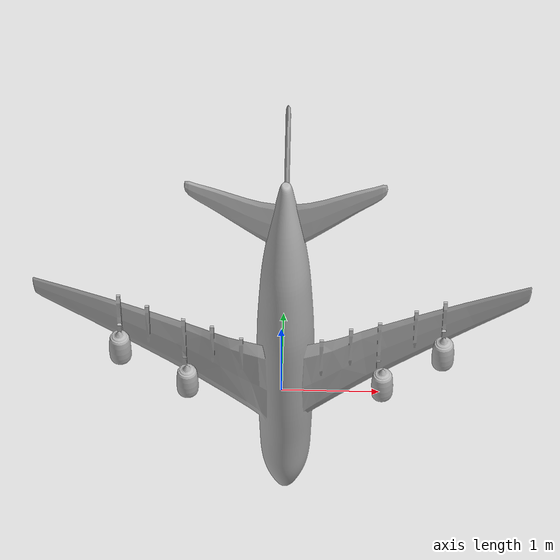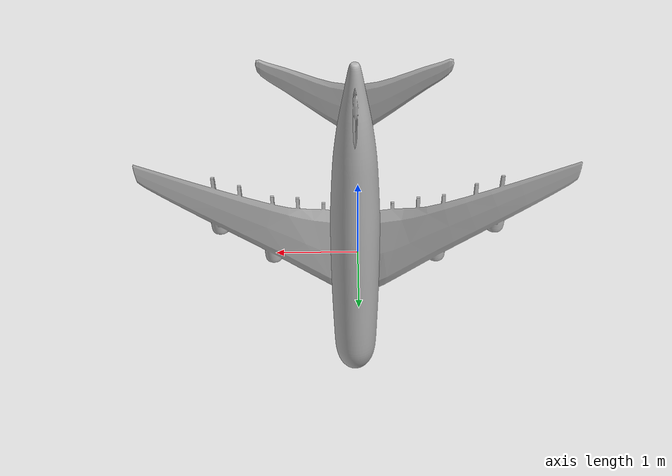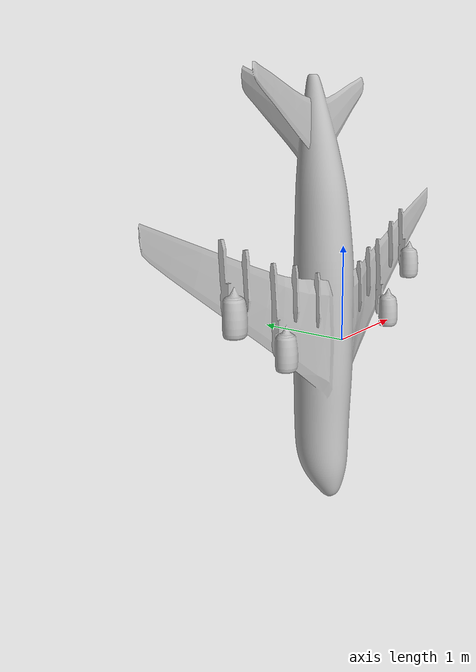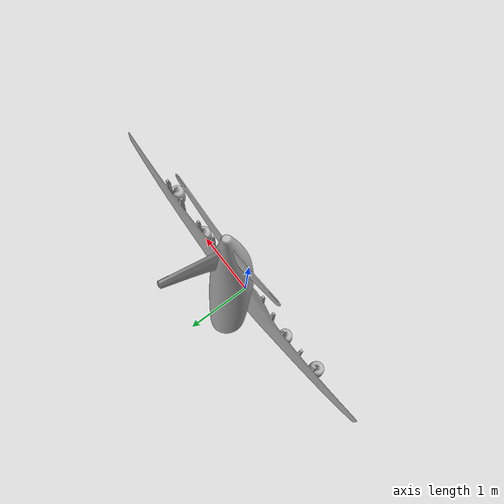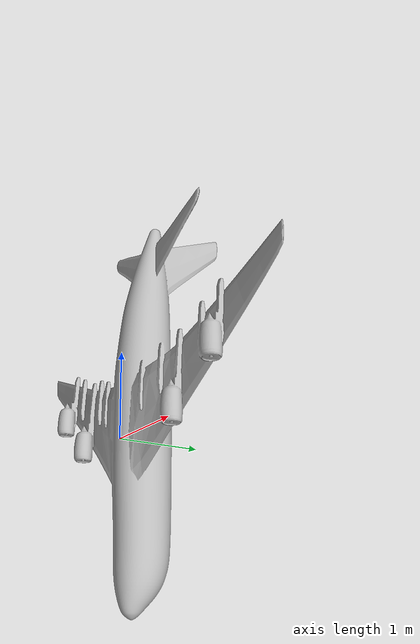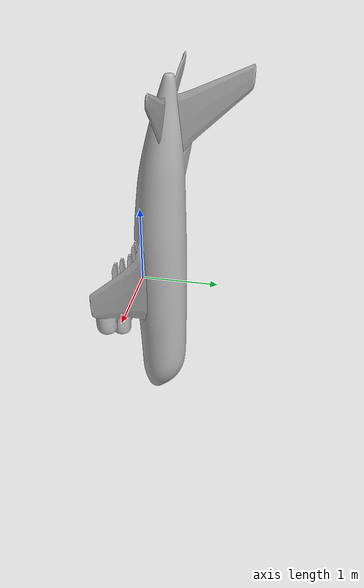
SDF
<?xml version="1.0" ?>
<sdf version="1.6">
    <model name="70-A380">
        <pose>0 0 0.5 0 0 0</pose>
        <static>true</static>
        <link name="link">
            <collision name="collision">
                <geometry>
                    <mesh>
                        <uri>model://70-a380/meshes/a380.obj</uri>
                        <scale>0.5 0.5 0.5</scale>
                    </mesh>
                </geometry>
            </collision>
            <visual name="visual">
                <geometry>
                    <mesh>
                        <uri>model://70-a380/meshes/a380.obj</uri>
                        <scale>0.5 0.5 0.5</scale>
                    </mesh>
                </geometry>
            </visual>
        </link>
    </model>
</sdf>
